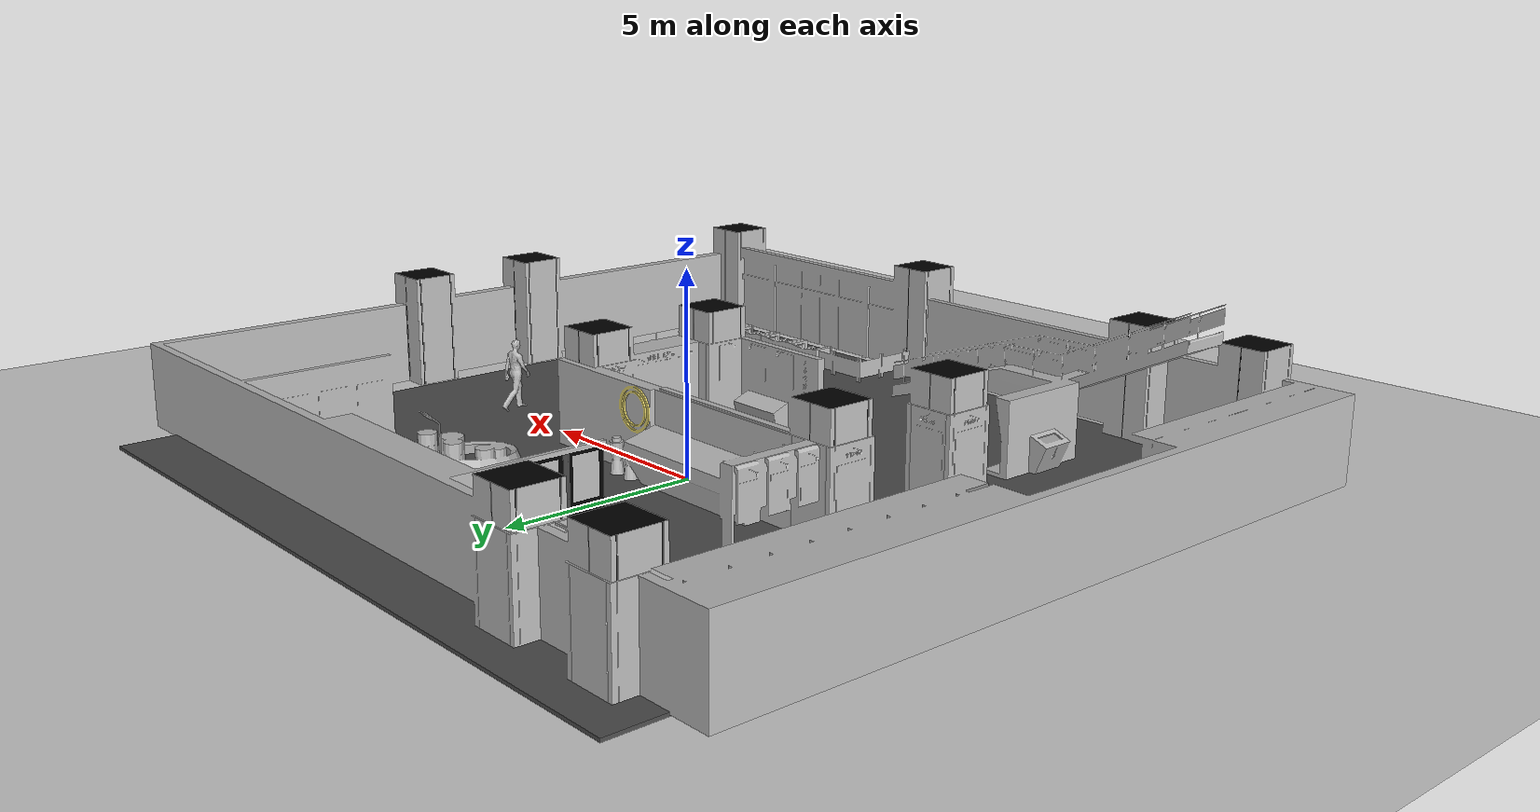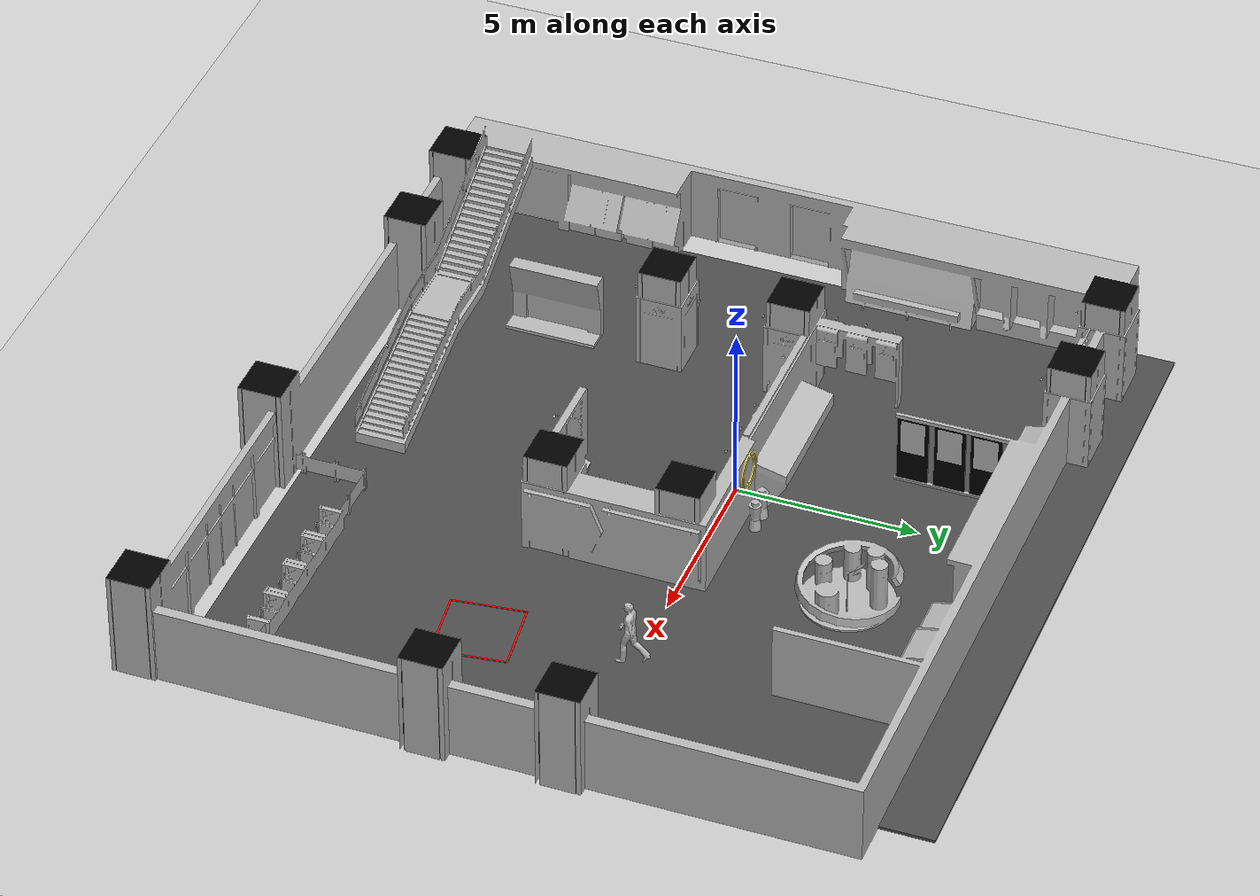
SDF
<sdf version="1.7">
 <world name="default">
  <light name="sun" type="directional">
   <pose>0 0 10 0 -0 0</pose>
   <diffuse>0.8 0.8 0.8 1</diffuse>
   <specular>0.2 0.2 0.2 1</specular>
   <attenuation>
    <range>1000</range>
    <constant>0.9</constant>
    <linear>0.01</linear>
    <quadratic>0.001</quadratic>
   </attenuation>
   <direction>-0.5 0.1 -0.9</direction>
   <spot><inner_angle>0</inner_angle><outer_angle>0</outer_angle><falloff>0</falloff></spot>
  </light>
  <model name="ground_plane">
   <static>1</static>
   <link name="link">
    <collision name="collision">
     <geometry><plane><normal>0 0 1</normal><size>100 100</size></plane></geometry>
     <surface>
      <contact><collide_bitmask>65535</collide_bitmask></contact>
      <friction><ode><mu>100</mu><mu2>50</mu2></ode></friction>
     </surface>
    </collision>
    <visual name="visual">
     <cast_shadows>0</cast_shadows>
     <geometry><plane><normal>0 0 1</normal><size>100 100</size></plane></geometry>
     <material>
      <script><uri>file://media/materials/scripts/gazebo.material</uri><name>Gazebo/Grey</name></script>
     </material>
    </visual>
   </link>
  </model>
  <gravity>0 0 -9.8</gravity>
  <magnetic_field>6e-06 2.3e-05 -4.2e-05</magnetic_field>
  <atmosphere type="adiabatic"/>
  <physics type="ode">
   <max_step_size>0.001</max_step_size>
   <real_time_factor>1</real_time_factor>
   <real_time_update_rate>1000</real_time_update_rate>
  </physics>
  <scene><ambient>0.4 0.4 0.4 1</ambient><background>0.7 0.7 0.7 1</background><shadows>1</shadows></scene>
  <spherical_coordinates>
   <surface_model>EARTH_WGS84</surface_model>
   <latitude_deg>0</latitude_deg>
   <longitude_deg>0</longitude_deg>
   <elevation>0</elevation>
   <heading_deg>0</heading_deg>
  </spherical_coordinates>
  <light name="user_directional_light_0" type="directional">
   <pose>12.5924 29.0347 1 0 -0 0</pose>
   <diffuse>0.5 0.5 0.5 1</diffuse>
   <specular>0.1 0.1 0.1 1</specular>
   <direction>0.1 0.1 -0.9</direction>
   <attenuation>
    <range>20</range>
    <constant>0.5</constant>
    <linear>0.01</linear>
    <quadratic>0.001</quadratic>
   </attenuation>
   <spot><inner_angle>0</inner_angle><outer_angle>0</outer_angle><falloff>0</falloff></spot>
  </light>
  <light name="user_directional_light_1" type="directional">
   <pose>11.9865 -27.8356 1 0 -0 0</pose>
   <diffuse>0.5 0.5 0.5 1</diffuse>
   <specular>0.1 0.1 0.1 1</specular>
   <direction>0.1 0.1 -0.9</direction>
   <attenuation>
    <range>20</range>
    <constant>0.5</constant>
    <linear>0.01</linear>
    <quadratic>0.001</quadratic>
   </attenuation>
   <spot><inner_angle>0</inner_angle><outer_angle>0</outer_angle><falloff>0</falloff></spot>
  </light>
  <light name="user_directional_light_2" type="directional">
   <pose>-11.73 29.4383 1 0 -0 0</pose>
   <diffuse>0.5 0.5 0.5 1</diffuse>
   <specular>0.1 0.1 0.1 1</specular>
   <direction>0.1 0.1 -0.9</direction>
   <attenuation>
    <range>20</range>
    <constant>0.5</constant>
    <linear>0.01</linear>
    <quadratic>0.001</quadratic>
   </attenuation>
   <spot><inner_angle>0</inner_angle><outer_angle>0</outer_angle><falloff>0</falloff></spot>
  </light>
  <light name="user_directional_light_3" type="directional">
   <pose>-12.4873 -27.4824 1 0 -0 0</pose>
   <diffuse>0.5 0.5 0.5 1</diffuse>
   <specular>0.1 0.1 0.1 1</specular>
   <direction>0.1 0.1 -0.9</direction>
   <attenuation>
    <range>20</range>
    <constant>0.5</constant>
    <linear>0.01</linear>
    <quadratic>0.001</quadratic>
   </attenuation>
   <spot><inner_angle>0</inner_angle><outer_angle>0</outer_angle><falloff>0</falloff></spot>
  </light>
  <light name="user_directional_light_4" type="directional">
   <pose>15.1656 0.977923 1 0 -0 0</pose>
   <diffuse>0.5 0.5 0.5 1</diffuse>
   <specular>0.1 0.1 0.1 1</specular>
   <direction>0.1 0.1 -0.9</direction>
   <attenuation>
    <range>20</range>
    <constant>0.5</constant>
    <linear>0.01</linear>
    <quadratic>0.001</quadratic>
   </attenuation>
   <spot><inner_angle>0</inner_angle><outer_angle>0</outer_angle><falloff>0</falloff></spot>
  </light>
  <light name="user_directional_light_5" type="directional">
   <pose>-16.5241 -1.24234 1 0 -0 0</pose>
   <diffuse>0.5 0.5 0.5 1</diffuse>
   <specular>0.1 0.1 0.1 1</specular>
   <direction>0.1 0.1 -0.9</direction>
   <attenuation>
    <range>20</range>
    <constant>0.5</constant>
    <linear>0.01</linear>
    <quadratic>0.001</quadratic>
   </attenuation>
   <spot><inner_angle>0</inner_angle><outer_angle>0</outer_angle><falloff>0</falloff></spot>
  </light>
  <model name="asphalt_plane">
   <static>1</static>
   <link name="link">
    <collision name="collision"><geometry><box><size>20 20 0.1</size></box></geometry></collision>
    <visual name="visual">
     <cast_shadows>0</cast_shadows>
     <geometry><box><size>20 20 0.1</size></box></geometry>
     <material>
      <script>
       <uri>model://asphalt_plane/materials/scripts</uri>
       <uri>model://asphalt_plane/materials/textures</uri>
       <name>vrc/asphalt</name>
      </script>
     </material>
    </visual>
   </link>
   <pose>0.937207 -0.832234 0 0 -0 0</pose>
  </model>
  <model name="person_walking">
   <link name="link">
    <inertial>
     <pose>0 0 0.95 0 -0 0</pose>
     <mass>80</mass>
     <inertia><ixx>27.82</ixx><ixy>0</ixy><ixz>0</ixz><iyy>24.88</iyy><iyz>0</iyz><izz>4.57</izz></inertia>
    </inertial>
    <collision name="bottom">
     <pose>0 0 0.01 0 -0 0</pose>
     <geometry><box><size>0.35 0.75 0.02</size></box></geometry>
    </collision>
    <collision name="person">
     <pose>0 0 -0.02 0 -0 0</pose>
     <geometry><mesh><uri>model://person_walking/meshes/walking.dae</uri></mesh></geometry>
    </collision>
    <visual name="visual">
     <pose>0 0 -0.02 0 -0 0</pose>
     <geometry><mesh><uri>model://person_walking/meshes/walking.dae</uri></mesh></geometry>
    </visual>
   </link>
   <pose>7.33578 -0.105068 0.049999 -2e-06 2e-06 0.013396</pose>
  </model>
  <model name="iscas_museum">
   <link name="link">
    <inertial><mass>15</mass></inertial>
    <collision name="collision">
     <pose>0 0 0 0 0 -1.57</pose>
     <geometry><mesh><uri>model://iscas_museum/meshes/ISCAS_museum.dae</uri></mesh></geometry>
    </collision>
    <visual name="visual">
     <pose>0 0 0 0 0 -1.57</pose>
     <geometry><mesh><uri>model://iscas_museum/meshes/ISCAS_museum.dae</uri></mesh></geometry>
    </visual>
   </link>
   <static>1</static>
   <pose>0.67615 -1.54267 0 0 0 -1.57415</pose>
  </model>
  <model name="red_square_box">
   <static>0</static>
   <link name="link">
    <inertial>
     <mass>5</mass>
     <inertia><ixx>0.083</ixx><iyy>0.083</iyy><izz>0.083</izz><ixy>0</ixy><ixz>0</ixz><iyz>0</iyz></inertia>
    </inertial>
    <visual name="left_line">
     <pose>-1 0 0.2 0 -0 0</pose>
     <geometry><box><size>0.05 2 0.01</size></box></geometry>
     <material><ambient>1 0 0 1</ambient><diffuse>1 0 0 1</diffuse></material>
    </visual>
    <collision name="left_line_collision">
     <pose>-1 0 0.2 0 -0 0</pose>
     <geometry><box><size>0.05 2 0.01</size></box></geometry>
    </collision>
    <visual name="right_line">
     <pose>1 0 0.2 0 -0 0</pose>
     <geometry><box><size>0.05 2 0.01</size></box></geometry>
     <material><ambient>1 0 0 1</ambient><diffuse>1 0 0 1</diffuse></material>
    </visual>
    <collision name="right_line_collision">
     <pose>1 0 0.2 0 -0 0</pose>
     <geometry><box><size>0.05 2 0.01</size></box></geometry>
    </collision>
    <visual name="top_line">
     <pose>0 1 0.2 0 -0 0</pose>
     <geometry><box><size>2 0.05 0.01</size></box></geometry>
     <material><ambient>1 0 0 1</ambient><diffuse>1 0 0 1</diffuse></material>
    </visual>
    <collision name="top_line_collision">
     <pose>0 1 0.2 0 -0 0</pose>
     <geometry><box><size>2 0.05 0.01</size></box></geometry>
    </collision>
    <visual name="bottom_line">
     <pose>0 -1 0.2 0 -0 0</pose>
     <geometry><box><size>2 0.05 0.01</size></box></geometry>
     <material><ambient>1 0 0 1</ambient><diffuse>1 0 0 1</diffuse></material>
    </visual>
    <collision name="bottom_line_collision">
     <pose>0 -1 0.2 0 -0 0</pose>
     <geometry><box><size>2 0.05 0.01</size></box></geometry>
    </collision>
   </link>
   <pose>7.615 -4.12153 -0.145001 1e-06 -1e-06 0.123199</pose>
  </model>
  <light name="user_spot_light_0" type="spot">
   <pose>-0.855864 -5.08066 1 0 -0 0</pose>
   <diffuse>0.5 0.5 0.5 1</diffuse>
   <specular>0.1 0.1 0.1 1</specular>
   <direction>0 0 -1</direction>
   <attenuation>
    <range>20</range>
    <constant>0.5</constant>
    <linear>0.01</linear>
    <quadratic>0.001</quadratic>
   </attenuation>
   <cast_shadows>0</cast_shadows>
   <spot><inner_angle>0.6</inner_angle><outer_angle>1</outer_angle><falloff>1</falloff></spot>
  </light>
  <light name="user_spot_light_1" type="spot">
   <pose>5.30696 -3.99486 1 0 -0 0</pose>
   <diffuse>0.5 0.5 0.5 1</diffuse>
   <specular>0.1 0.1 0.1 1</specular>
   <direction>0 0 -1</direction>
   <attenuation>
    <range>20</range>
    <constant>0.5</constant>
    <linear>0.01</linear>
    <quadratic>0.001</quadratic>
   </attenuation>
   <cast_shadows>0</cast_shadows>
   <spot><inner_angle>0.6</inner_angle><outer_angle>1</outer_angle><falloff>1</falloff></spot>
  </light>
 </world>
</sdf>
